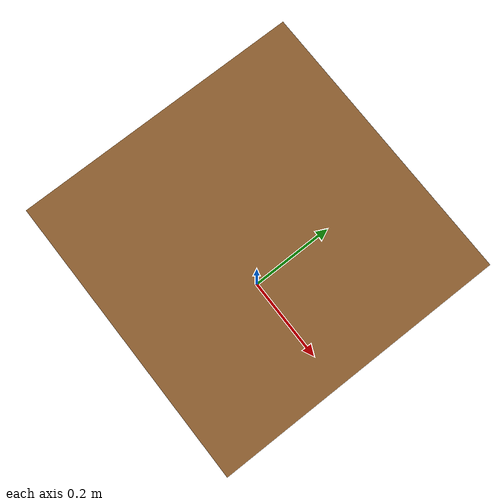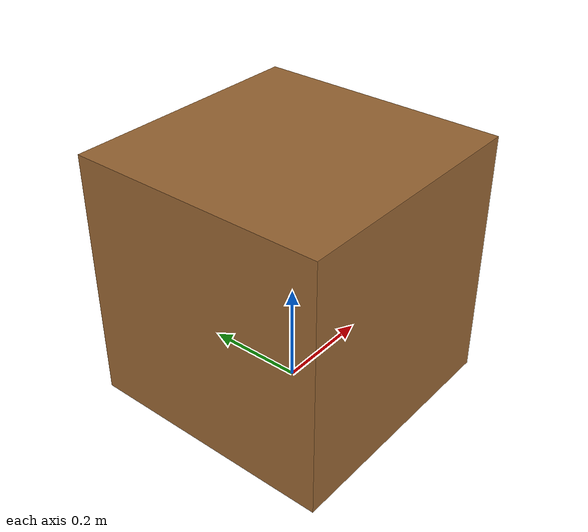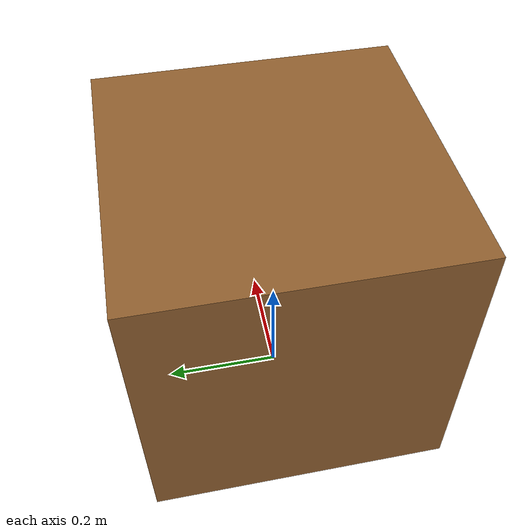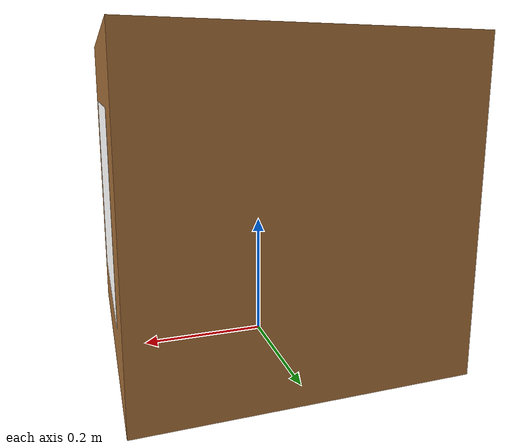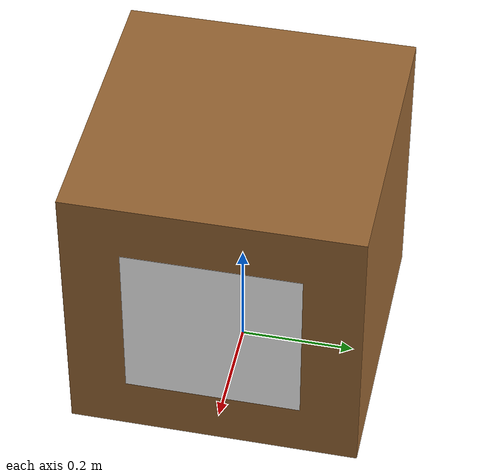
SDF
<?xml version="1.0" ?>
<sdf version="1.8">
  <model name="cargo_box">
    <link name="box_link">
      <pose>0 0 0.25 0 0 0</pose> <collision name="collision">
        <geometry><box><size>0.5 0.5 0.5</size></box></geometry>
      </collision>
      <visual name="visual">
        <geometry><box><size>0.5 0.5 0.5</size></box></geometry>
        <material><ambient>0.6 0.4 0.2 1</ambient></material> </visual>
    </link>

    <link name="tag_link">
      <pose>0.251 0 0.25 0 1.5708 0</pose>
      <visual name="tag_visual">
        <geometry><plane><normal>0 0 1</normal><size>0.3 0.3</size></plane></geometry>
        <material>
          <diffuse>1 1 1 1</diffuse>
          <pbr>
            <metal>
              <albedo_map>materials/textures/tag36_11.png</albedo_map>
              <roughness>1.0</roughness>
            </metal>
          </pbr>
        </material>
      </visual>
    </link>

    <joint name="tag_joint" type="fixed">
      <parent>box_link</parent>
      <child>tag_link</child>
    </joint>
  </model>
</sdf>
